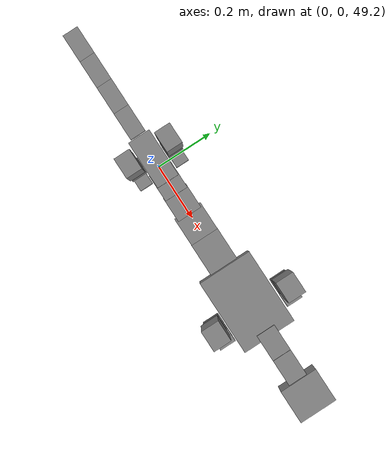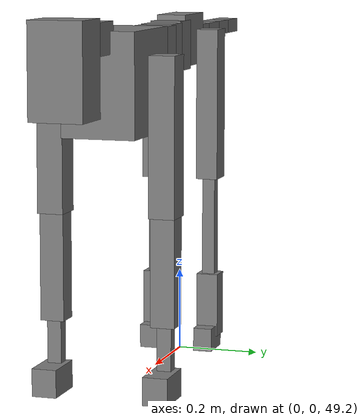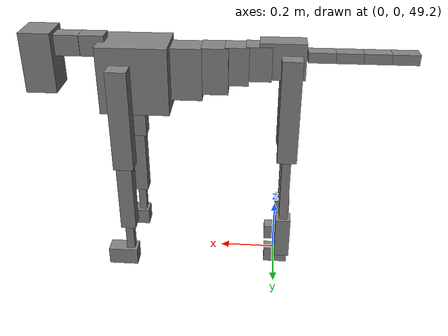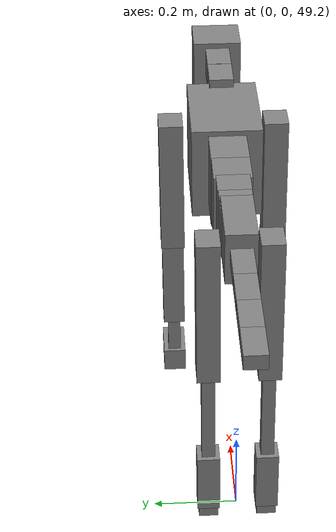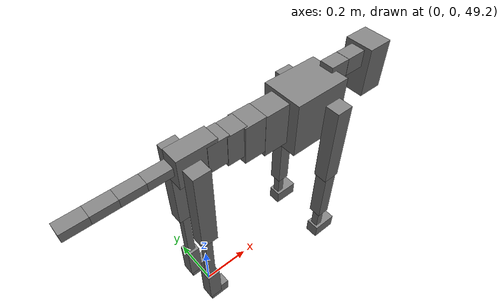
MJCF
<mujoco model="dog">

    <default>
        <joint armature="0.02" stiffness="1" damping="0.2" limited="true"/>
        <geom condim="3" friction="1 0.05 0.05" margin="0.01"/>
        <motor ctrllimited="true" ctrlrange="-1.0 1.0" forcelimited="true" gear="50"/>
    </default>

    <compiler inertiafromgeom="true" angle="radian"/>

    <option timestep="0.016" iterations="50" tolerance="1e-10" solver="Newton" jacobian="dense" cone="pyramidal"/>

    <size nconmax="20000" njmax="60000" nstack="5000000"/>
    <visual>
        <map force="0.1" zfar="30"/>
        <rgba haze="0.15 0.25 0.35 1"/>
        <quality shadowsize="2048"/>
        <global offwidth="800" offheight="800"/>
    </visual>

    <asset>
        <texture type="skybox" builtin="gradient" rgb1="0.3 0.5 0.7" rgb2="0 0 0" width="512" height="512"/>
        <texture name="texplane" type="2d" builtin="checker" rgb1=".2 .3 .4" rgb2=".1 0.15 0.2" width="512" height="512"
                 mark="cross" markrgb=".8 .8 .8"/>
        <texture name="texgeom" type="cube" builtin="flat" mark="cross" width="127" height="1278" rgb1="0.8 0.6 0.4"
                 rgb2="0.8 0.6 0.4" markrgb="1 1 1" random="0.01"/>

        <material name="matplane" reflectance="0.3" texture="texplane" texrepeat="1 1" texuniform="true"/>
        <material name="matgeom" texture="texgeom" texuniform="true" rgba="0.8 0.6 .4 1"/>
    </asset>

    <worldbody>
        <geom name="floor" pos="0 0 0" size="0 0 .25" type="plane" material="matplane" condim="3"/>

        <light directional="false" diffuse=".2 .2 .2" specular="0 0 0" pos="0 0 5" dir="0 0 -1" castshadow="false"/>
        <light mode="targetbodycom" target="torso" directional="false" diffuse=".8 .8 .8" specular="0.3 0.3 0.3"
               pos="0 0 4.0" dir="0 0 -1"/>

        <body name="root" pos="0 0 50">
            <freejoint name="root_1"/>
            <geom type="box" pos="0 0 -0.02" size="0.0774  0.0358  0.063" density="2030"/>

            <body name="spine1" pos="0.054 0 0">
                <joint name="spine1_y" axis="0 1 0" range="0 0.7" limited="true"/>
                <geom type="box" pos="0.02375 0 -0.03" size="0.04375  0.0375  0.05985" density="2030"/>

                <body name="spine2" pos="0.0612 0 0">
                    <joint name="spine2_y" axis="0 1 0" range="-0.15 0.15" limited="true"/>
                    <geom type="box" pos="0.03555  0  -0.04" size="0.04055  0.039  0.06615" density="2030"/>

                    <body name="spine3" pos="0.0730 0 0">
                        <joint name="spine3_y" axis="0 1 0" range="-0.15 0.15" limited="true"/>
                        <geom type="box" pos="0.03555  0  -0.057" size="0.04555  0.0445  0.081" density="2030"/>

                        <body name="spine4" pos="0.0780 0 0">
                            <joint name="spine4_y" axis="0 1 0" range="-0.15 0.15" limited="true"/>
                            <geom type="box" pos="0.05265  0  -0.07" size="0.05265  0.045  0.09135" density="2030"/>

                            <body name="torso" pos="0.1082 0 0">
                                <joint name="torso_y" axis="0 1 0" range="-0.15 0.15" limited="true"/>
                                <geom type="box" pos="0.11925  0  -0.085" size="0.11925  0.085  0.11745"
                                      density="2030"/>

                                <body name="neck1" pos="0.2160  0   0.0180">
                                    <joint name="neck1_y" axis="0 1 0" range="-1.2  -1" limited="true"/>
                                    <geom type="box" pos="0.0423  0  0" size="0.0423  0.03  0.036" density="2325"/>

                                    <body name="neck2" pos="0.0853  0  0">
                                        <joint name="neck2_y" axis="0 1 0" range="0.1  0" limited="true"/>
                                        <geom type="box" pos="0.0423  0  0" size="0.0423  0.03  0.036" density="2325"/>

                                        <body name="head" pos="0.0853  0  0">
                                            <joint name="head_y" axis="0 1 0" range="-0.3  -0.2" limited="true"/>
                                            <geom type="box" pos="0.0531  0  -0.055" size="0.0531  0.06  0.1044"
                                                  density="4030"/>

                                        </body>
                                    </body>
                                </body>

                                <body name="front_shoulder" pos="0.156  0   -0.0480">
                                    <joint name="front_shoulder_y" axis="0 1 0" range="-1 1.5" limited="true"/>
                                    <geom type="box" pos="0 0.13 -0.1522" size="0.0350  0.0299  0.1789" density="1158"/>
                                    <geom type="box" pos="0 -0.13 -0.1522" size="0.0350  0.0299  0.1789"
                                          density="1158"/>

                                    <body name="front_elbow" pos="0  0  -0.3045">
                                        <joint name="front_elbow_y" axis="0 1 0" range="-2 0" limited="true"/>
                                        <geom type="box" pos="0 0.13 -0.1356" size="0.0269  0.0275  0.1356"
                                              density="1081"/>
                                        <geom type="box" pos="0 -0.13 -0.1356" size="0.0269  0.0275  0.1356"
                                              density="1081"/>

                                        <body name="front_wrist" pos="0  0  -0.2713">
                                            <joint name="front_wrist_y" axis="0 1 0" range="-0.2 0" limited="true"/>
                                            <geom type="box" pos="0 0.13 -0.0573" size="0.0147  0.0163  0.0704"
                                                  density="1664"/>
                                            <geom type="box" pos="0 -0.13 -0.0573" size="0.0147  0.0163  0.0704"
                                                  density="1664"/>

                                            <body name="front_finger_end" pos="0  0  -0.1146">
                                                <joint name="front_finger_y" axis="0 1 0" range="-0.4 1"
                                                       limited="true"/>
                                                <geom type="box" pos="0.0287  0.13  -0.0170"
                                                      size="0.0527  0.0287  0.0320" density="1515"/>
                                                <geom type="box" pos="0.0287  -0.13  -0.0170"
                                                      size="0.0527  0.0287  0.0320" density="1515"/>

                                            </body>

                                        </body>
                                    </body>
                                </body>

                            </body>
                        </body>
                    </body>
                </body>
            </body>

            <body name="back_hip" pos="-0.03 0 -0.018">
                <joint name="back_hip_y" axis="0 1 0" range="-1.5 0.3" limited="true"/>
                <geom type="box" pos="0 0.07 -0.1630" size="0.0340  0.0267  0.1858" density="1154"/>
                <geom type="box" pos="0 -0.07 -0.1630" size="0.0340  0.0267  0.1858" density="1154"/>

                <body name="back_knee" pos="0  0  -0.3260">
                    <joint name="back_knee_y" axis="0 1 0" range="0 2.8" limited="true"/>
                    <geom type="box" pos="0 0.07 -0.1379" size="0.0157  0.0155  0.1535" density="1227"/>
                    <geom type="box" pos="0 -0.07 -0.1379" size="0.0157  0.0155  0.1535" density="1227"/>

                    <body name="back_ankle" pos="0  0  -0.2759">
                        <joint name="back_ankle_y" axis="0 1 0" range="-2.2 0" limited="true"/>
                        <geom type="box" pos="0 0.07 -0.0676" size="0.0268  0.0268  0.0789" density="1284"/>
                        <geom type="box" pos="0 -0.07 -0.0676" size="0.0268  0.0268  0.0789" density="1284"/>

                        <body name="back_toe_end" pos="0  0  -0.1352">
                            <joint name="back_toe_y" axis="0 1 0" range="-0.4 1" limited="true"/>
                            <geom type="box" pos="0.0232  0.07  -0.0137" size="0.0425  0.0232  0.0287" density="1515"/>
                            <geom type="box" pos="0.0232  -0.07  -0.0137" size="0.0425  0.0232  0.0287" density="1515"/>

                        </body>
                    </body>
                </body>
            </body>

            <body name="tail1" pos="-0.074 0 -0.006">
                <joint name="tail1_y" axis="0 1 0" range="-0.2 0.2" limited="true"/>
                <geom type="box" pos="-0.0536  0  0" size="0.045  0.025  0.0175" density="1587"/>

                <body name="tail2" pos="-0.09 0 0">
                    <joint name="tail2_y" axis="0 1 0" range="-0.2 0.2" limited="true"/>
                    <geom type="box" pos="-0.0536  0  0" size="0.045  0.025  0.0175" density="1587"/>

                    <body name="tail3" pos="-0.09 0 0">
                        <joint name="tail3_y" axis="0 1 0" range="-0.2 0.2" limited="true"/>
                        <geom type="box" pos="-0.0536  0  0" size="0.045  0.025  0.0175" density="1587"/>

                        <body name="tail4" pos="-0.09 0 0">
                            <joint name="tail4_y" axis="0 1 0" range="-0.2 0.2" limited="true"/>
                            <geom type="box" pos="-0.0536  0  0" size="0.045  0.025  0.0175" density="1587"/>

                        </body>
                    </body>
                </body>
            </body>
        </body>
    </worldbody>

    <actuator>
        <motor joint="spine1_y" forcerange="-150 150     "/>
        <motor joint="spine2_y" forcerange="-150 150     "/>
        <motor joint="spine3_y" forcerange="-150 150     "/>
        <motor joint="spine4_y" forcerange="-150 150     "/>
        <motor joint="torso_y" forcerange="-150 150     "/>
        <motor joint="neck1_y" forcerange="-100 100       "/>
        <motor joint="neck2_y" forcerange="-100 100       "/>
        <motor joint="head_y" forcerange="-150 150       "/>
        <motor joint="front_shoulder_y" forcerange="-146.03 153.58"/>
        <motor joint="front_elbow_y" forcerange="-193.43 106.31"/>
        <motor joint="front_wrist_y" forcerange="-63.15 67.46"/>
        <motor joint="front_finger_y" forcerange="-27.59 85.62"/>
        <motor joint="back_hip_y" forcerange="-294.97 260.75"/>
        <motor joint="back_knee_y" forcerange="-207.86 217.40"/>
        <motor joint="back_angle_y" forcerange="-248.73 80.38"/>
        <motor joint="back_toe_y" forcerange="-63.42 41.93"/>
        <motor joint="tail1_y" forcerange="-50 50     "/>
        <motor joint="tail2_y" forcerange="-50 50     "/>
        <motor joint="tail3_y" forcerange="-50 50     "/>
        <motor joint="tail4_y" forcerange="-50 50     "/>
    </actuator>
</mujoco>
